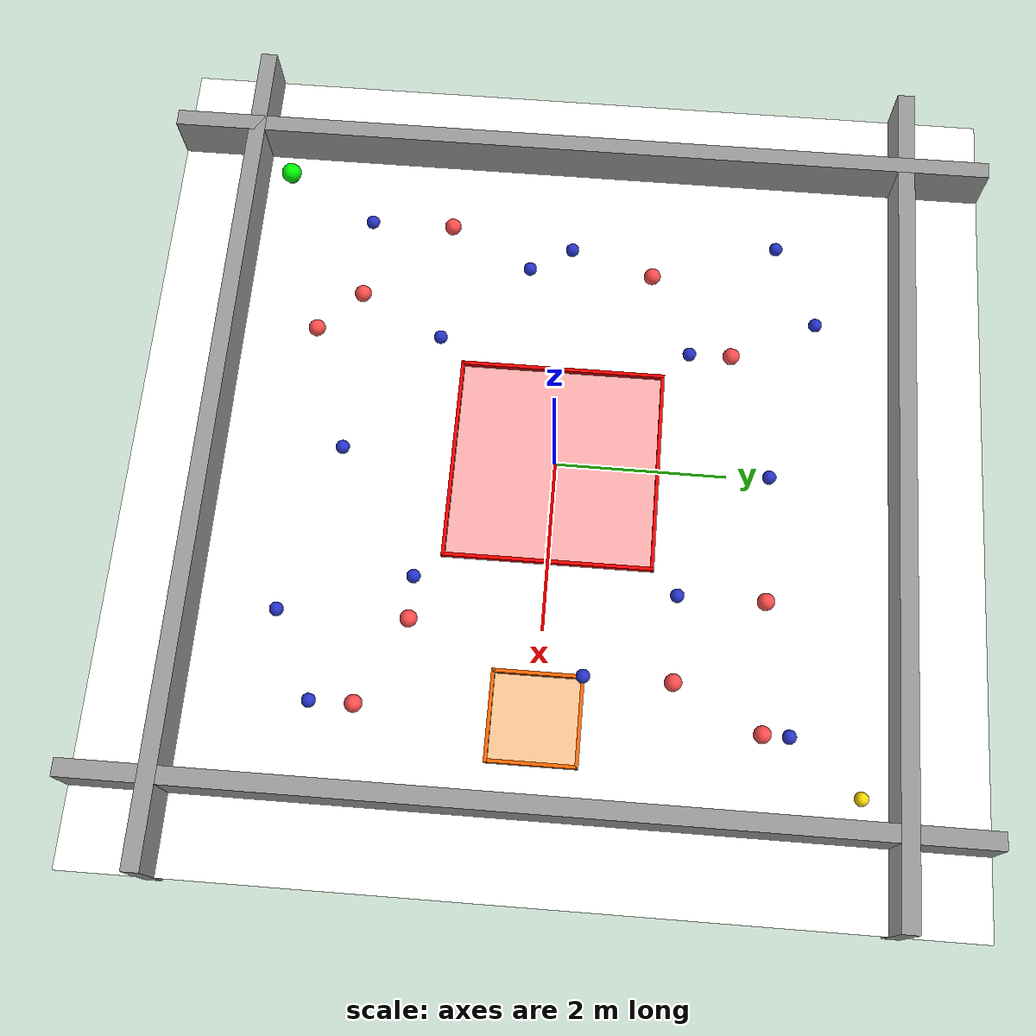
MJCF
<mujoco>
  <option gravity="0 0 -50" integrator="RK4" timestep="0.01"/>
  <visual><map znear="0.01"/></visual>

  <asset>
    <texture name="grid" type="2d" builtin="checker" width="512" height="512"
             rgb1="0.8 0.8 0.8" rgb2="1 1 1"/>
    <material name="grid_mat" texture="grid" texrepeat="10 10" reflectance="0.2"/>
    <material name="nfz_mat" rgba="1 0.15 0.15 0.35"/>
    <material name="nfz2_mat" rgba="1 0.5 0.0 0.4"/>
  </asset>

  <default>
    <geom friction="1 0.01 0.001" solref="0.02 1" solimp="0.9 0.95 0.001"/>
    <site type="sphere" size="0.08"/>
    <default class="dynamic">
      <geom type="sphere" size="0.1" rgba="1 0.3 0.3 1"/>
    </default>
    <default class="static">
      <geom type="sphere" size="0.08" rgba="0.15 0.2 0.8 1"/>
    </default>
  </default>

  <worldbody>
    <camera name="top" pos="0 0 10" xyaxes="1 0 0 0 1 0"/>

    <!-- Floor + walls -->
    <geom name="floor" type="plane" size="5 5 0.1" material="grid_mat" rgba="1 1 1 1"/>
    <geom name="wall_left"  type="box" pos="-4 0 0.1" size="0.1 5 0.5" rgba="0.6 0.6 0.6 1"/>
    <geom name="wall_right" type="box" pos="4 0 0.1"  size="0.1 5 0.5" rgba="0.6 0.6 0.6 1"/>
    <geom name="wall_top"   type="box" pos="0 4 0.1"  size="5 0.1 0.5" rgba="0.6 0.6 0.6 1"/>
    <geom name="wall_bot"   type="box" pos="0 -4 0.1" size="5 0.1 0.5" rgba="0.6 0.6 0.6 1"/>

    <!-- NFZ 1 (CENTER) - Red translucent rectangle -->
    <!-- Center: (0, 0), extends x=[-1.2, 1.2] y=[-1.2, 1.2] -->
    <geom name="nfz1_floor" type="box" pos="0 0 0.005" size="1.2 1.2 0.005"
          material="nfz_mat" contype="0" conaffinity="0"/>
    <geom name="nfz1_border_left"   type="box" pos="-1.2 0 0.02" size="0.02 1.22 0.04"
          rgba="1 0 0 0.9" contype="0" conaffinity="0"/>
    <geom name="nfz1_border_right"  type="box" pos="1.2 0 0.02"  size="0.02 1.22 0.04"
          rgba="1 0 0 0.9" contype="0" conaffinity="0"/>
    <geom name="nfz1_border_top"    type="box" pos="0 1.2 0.02"  size="1.22 0.02 0.04"
          rgba="1 0 0 0.9" contype="0" conaffinity="0"/>
    <geom name="nfz1_border_bottom" type="box" pos="0 -1.2 0.02" size="1.22 0.02 0.04"
          rgba="1 0 0 0.9" contype="0" conaffinity="0"/>

    <!-- NFZ 2 (RIGHT SIDE) - Orange translucent vertical strip -->
    <!-- Center: (3.15, 0.0), extends x=[2.5, 3.8] y=[-3.0, 3.0] -->
    <geom name="nfz2_floor" type="box" pos="3.0 0.0 0.005" size="0.5 0.5 0.005"
          material="nfz2_mat" contype="0" conaffinity="0"/>
    <geom name="nfz2_border_left"   type="box" pos="2.5 0.0 0.02" size="0.02 0.52 0.04"
          rgba="1 0.4 0 0.9" contype="0" conaffinity="0"/>
    <geom name="nfz2_border_right"  type="box" pos="3.5 0.0 0.02" size="0.02 0.52 0.04"
          rgba="1 0.4 0 0.9" contype="0" conaffinity="0"/>
    <geom name="nfz2_border_top"    type="box" pos="3.0 0.5 0.02" size="0.52 0.02 0.04"
          rgba="1 0.4 0 0.9" contype="0" conaffinity="0"/>
    <geom name="nfz2_border_bottom" type="box" pos="3.0 -0.5 0.02" size="0.52 0.02 0.04"
          rgba="1 0.4 0 0.9" contype="0" conaffinity="0"/>

    <!-- Start/Goal markers -->
    <site name="start" pos="-3.6 -3.6 0.02" rgba="0 1 0 1"/>
    <site name="goal"  pos=" 3.6  3.6 0.02" rgba="1 0.85 0 1"/>

    <!-- 10 DYNAMIC obstacles (cat1-cat10) - RED with freejoint -->
    <body name="cat1"  pos="-3.0 -1.5 0.1"><freejoint/><geom class="dynamic"/></body>
    <body name="cat2"  pos="-2.0 -2.5 0.1"><freejoint/><geom class="dynamic"/></body>
    <body name="cat3"  pos="-1.5  2.0 0.1"><freejoint/><geom class="dynamic"/></body>
    <body name="cat4"  pos=" 2.0 -1.5 0.1"><freejoint/><geom class="dynamic"/></body>
    <body name="cat5"  pos=" 3.0 -2.0 0.1"><freejoint/><geom class="dynamic"/></body>
    <body name="cat6"  pos="-2.5  1.0 0.1"><freejoint/><geom class="dynamic"/></body>
    <body name="cat7"  pos=" 1.5  2.5 0.1"><freejoint/><geom class="dynamic"/></body>
    <body name="cat8"  pos=" 2.5  1.5 0.1"><freejoint/><geom class="dynamic"/></body>
    <body name="cat9"  pos="-1.5 -3.0 0.1"><freejoint/><geom class="dynamic"/></body>
    <body name="cat10" pos=" 3.0  2.5 0.1"><freejoint/><geom class="dynamic"/></body>

    <!-- 15 STATIC obstacles (cat11-cat25) - BLUE with freejoint -->
    <body name="cat11" pos="-3.0 -2.5 0.08"><freejoint/><geom class="static"/></body>
    <body name="cat12" pos=" 3.0 -2.5 0.08"><freejoint/><geom class="static"/></body>
    <body name="cat13" pos="-3.0  2.5 0.08"><freejoint/><geom class="static"/></body>
    <body name="cat14" pos=" 3.0  2.8 0.08"><freejoint/><geom class="static"/></body>
    <body name="cat15" pos="-1.5 -1.5 0.08"><freejoint/><geom class="static"/></body>
    <body name="cat16" pos=" 1.5 -1.5 0.08"><freejoint/><geom class="static"/></body>
    <body name="cat17" pos="-1.5  1.5 0.08"><freejoint/><geom class="static"/></body>
    <body name="cat18" pos=" 1.5  1.5 0.08"><freejoint/><geom class="static"/></body>
    <body name="cat19" pos="-2.5 -0.5 0.08"><freejoint/><geom class="static"/></body>
    <body name="cat20" pos=" 2.5  0.5 0.08"><freejoint/><geom class="static"/></body>
    <body name="cat21" pos=" 0.0 -2.5 0.08"><freejoint/><geom class="static"/></body>
    <body name="cat22" pos=" 0.0  2.5 0.08"><freejoint/><geom class="static"/></body>
    <body name="cat23" pos="-2.0  3.0 0.08"><freejoint/><geom class="static"/></body>
    <body name="cat24" pos=" 2.0 -3.0 0.08"><freejoint/><geom class="static"/></body>
    <body name="cat25" pos="-2.8  0.0 0.08"><freejoint/><geom class="static"/></body>

    <!-- Robot -->
    <body name="robot" pos="-3.6 -3.6 0.12">
      <freejoint/>
      <geom name="robot_geom" type="sphere" size="0.12" rgba="0 1 0 1"/>
    </body>
  </worldbody>
</mujoco>
